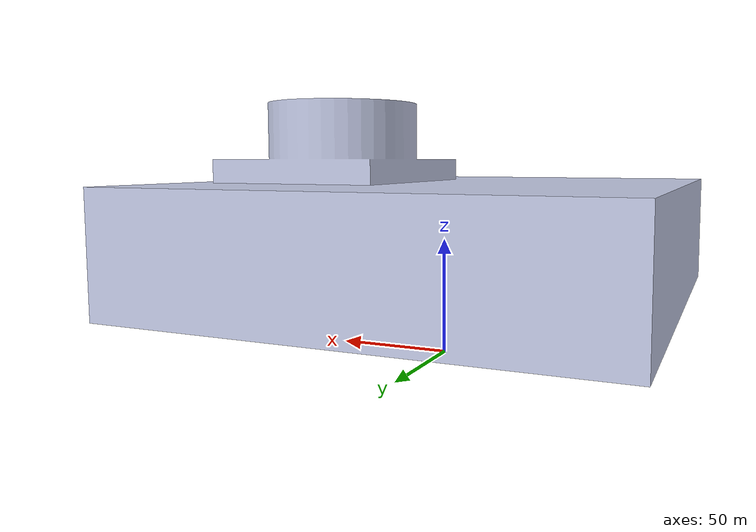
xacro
<?xml version="1.0"?>
<robot xmlns:xacro="http://www.ros.org/wiki/xacro">

  <!-- needed -->
  <link name="base_footprint"/>
  <joint name="base_footprint_joint" type="fixed">
    <parent link="base_footprint"/>
    <child link="base_link"/>
    <origin xyz="0 0 0.0589" rpy="0 0 0"/>
  </joint>

  <!-- Dummy base_link  -->
  <link name="base_link"/>

  <!-- Chassis holds all SolidWorks geometry -->
  <joint name="base_link_joint" type="fixed">
    <parent link="base_link"/>
    <child link="chassis_link"/>
    <origin xyz="0 0 0" rpy="0 0 0"/>
  </joint>

  <link
    name="chassis_link">
    <inertial>
      <origin
        xyz="-0.00532200345472322 -2.89727839073439E-05 0.0205340312252205"
        rpy="0 0 0" />
      <mass
        value="0.587519581152304" />
      <inertia
        ixx="0.000985881224021901"
        ixy="6.35861994897702E-06"
        ixz="1.18299056373326E-09"
        iyy="0.00332617399533149"
        iyz="4.68410909656308E-12"
        izz="0.00429896157620389" />
    </inertial>
    <visual>
      <origin
        xyz="0 0 0"
        rpy="0 0 0" />
      <geometry>
        <mesh
          filename="file://$(find diff_robot_description)/meshes/base_link.STL" />
      </geometry>
      <material
        name="">
        <color
          rgba="0.792156862745098 0.819607843137255 0.933333333333333 1" />
      </material>
    </visual>
    <collision>
      <origin
        xyz="0 0 0"
        rpy="0 0 0" />
      <geometry>
        <mesh
          filename="file://$(find diff_robot_description)/meshes/base_link.STL" />
      </geometry>
    </collision>
  </link>
  <link
    name="left_wheel_link">
    <inertial>
      <origin
        xyz="0.000226950266131398 -0.000822663546008351 -0.0141167375775528"
        rpy="0 0 0" />
      <mass
        value="0.0419260450490871" />
      <inertia
        ixx="1.83755962185369E-05"
        ixy="-8.74106100452391E-09"
        ixz="1.04296609518235E-10"
        iyy="1.84059038445016E-05"
        iyz="-4.18293401143653E-10"
        izz="3.09191345916328E-05" />
    </inertial>
    <visual>
      <origin
        xyz="0 0 0"
        rpy="0 0 0" />
      <geometry>
        <mesh
          filename="file://$(find diff_robot_description)/meshes/left_wheel_link.STL" />
      </geometry>
      <material
        name="">
        <color
          rgba="0.792156862745098 0.819607843137255 0.933333333333333 1" />
      </material>
    </visual>
    <collision>
      <origin
        xyz="0 0 0"
        rpy="0 0 0" />
      <geometry>
        <mesh
          filename="file://$(find diff_robot_description)/meshes/left_wheel_link.STL" />
      </geometry>
    </collision>
  </link>
  <joint
    name="left_wheel_joint"
    type="continuous">
    <origin
      xyz="-0.07135 0.10579 -0.0264"
      rpy="-1.5708 0 0" />
    <parent
      link="chassis_link" />
    <child
      link="left_wheel_link" />
    <axis
      xyz="0 0 -1" />
    <dynamics
      damping="0.1"
      friction="2.0" />
  </joint>
  <link
    name="right_wheel_link">
    <inertial>
      <origin
        xyz="5.80252005439874E-05 0.000851419291212574 0.0141167375775615"
        rpy="0 0 0" />
      <mass
        value="0.0419260450490687" />
      <inertia
        ixx="1.83733836962044E-05"
        ixy="2.11059076155946E-09"
        ixz="-1.86283567509692E-11"
        iyy="1.84081163668218E-05"
        iyz="-4.30697245532457E-10"
        izz="3.09191345916282E-05" />
    </inertial>
    <visual>
      <origin
        xyz="0 0 0"
        rpy="0 0 0" />
      <geometry>
        <mesh
          filename="file://$(find diff_robot_description)/meshes/right_wheel_link.STL" />
      </geometry>
      <material
        name="">
        <color
          rgba="0.792156862745098 0.819607843137255 0.933333333333333 1" />
      </material>
    </visual>
    <collision>
      <origin
        xyz="0 0 0"
        rpy="0 0 0" />
      <geometry>
        <mesh
          filename="file://$(find diff_robot_description)/meshes/right_wheel_link.STL" />
      </geometry>
    </collision>
  </link>
  <joint
    name="right_wheel_joint"
    type="continuous">
    <origin
      xyz="-0.07135 -0.10581 -0.0264"
      rpy="-1.5708 0 0" />
    <parent
      link="chassis_link" />
    <child
      link="right_wheel_link" />
    <axis
      xyz="0 0 -1" />
    <dynamics
      damping="0.1"
      friction="2.0" />
  </joint>
  <link
    name="right_caster_link">
    <inertial>
      <origin
        xyz="0.00268816148973561 -0.00203536418614769 0.00191349352759729"
        rpy="0 0 0" />
      <mass
        value="0.0332686534414054" />
      <inertia
        ixx="3.95101603832686E-06"
        ixy="8.38120688817775E-08"
        ixz="1.70812071112867E-08"
        iyy="3.31627423081446E-06"
        iyz="-1.11469659665923E-08"
        izz="5.95635417481321E-06" />
    </inertial>
    <visual>
      <origin
        xyz="0 0 0"
        rpy="0 0 0" />
      <geometry>
        <mesh
          filename="file://$(find diff_robot_description)/meshes/right_caster_link.STL" />
      </geometry>
      <material
        name="">
        <color
          rgba="0.792156862745098 0.819607843137255 0.933333333333333 1" />
      </material>
    </visual>
    <collision>
      <origin
        xyz="0 0 0"
        rpy="0 0 0" />
      <geometry>
        <mesh
          filename="file://$(find diff_robot_description)/meshes/right_caster_link.STL" />
      </geometry>
    </collision>
  </link>
  <joint
    name="right_caster_joint"
    type="fixed">
    <origin
      xyz="0.08865 -0.044508 -0.025"
      rpy="0 0 0" />
    <parent
      link="chassis_link" />
    <child
      link="right_caster_link" />
    <axis
      xyz="0 0 0" />
  </joint>
  <link
    name="left_caster_link">
    <inertial>
      <origin
        xyz="0.00268816148974094 -0.00147315327391973 0.00191349352759895"
        rpy="0 0 0" />
      <mass
        value="0.0332686534414053" />
      <inertia
        ixx="3.95101603832685E-06"
        ixy="8.38120688817571E-08"
        ixz="1.70812071113248E-08"
        iyy="3.31627423081444E-06"
        iyz="-1.11469659666131E-08"
        izz="5.95635417481318E-06" />
    </inertial>
    <visual>
      <origin
        xyz="0 0 0"
        rpy="0 0 0" />
      <geometry>
        <mesh
          filename="file://$(find diff_robot_description)/meshes/left_caster_link.STL" />
      </geometry>
      <material
        name="">
        <color
          rgba="0.792156862745098 0.819607843137255 0.933333333333333 1" />
      </material>
    </visual>
    <collision>
      <origin
        xyz="0 0 0"
        rpy="0 0 0" />
      <geometry>
        <mesh
          filename="file://$(find diff_robot_description)/meshes/left_caster_link.STL" />
      </geometry>
    </collision>
  </link>
  <joint
    name="left_caster_joint"
    type="fixed">
    <origin
      xyz="0.08865 0.044508 -0.025"
      rpy="0 0 0" />
    <parent
      link="chassis_link" />
    <child
      link="left_caster_link" />
    <axis
      xyz="0 0 0" />
  </joint>

<gazebo reference="left_wheel_link">
  <mu1>1.0</mu1>
  <mu2>1.0</mu2>
  <kp>100000</kp>
  <kd>100</kd>
</gazebo>

<gazebo reference="right_wheel_link">
  <mu1>1.0</mu1>
  <mu2>1.0</mu2>
  <kp>100000</kp>
  <kd>100</kd>
</gazebo>

</robot>
